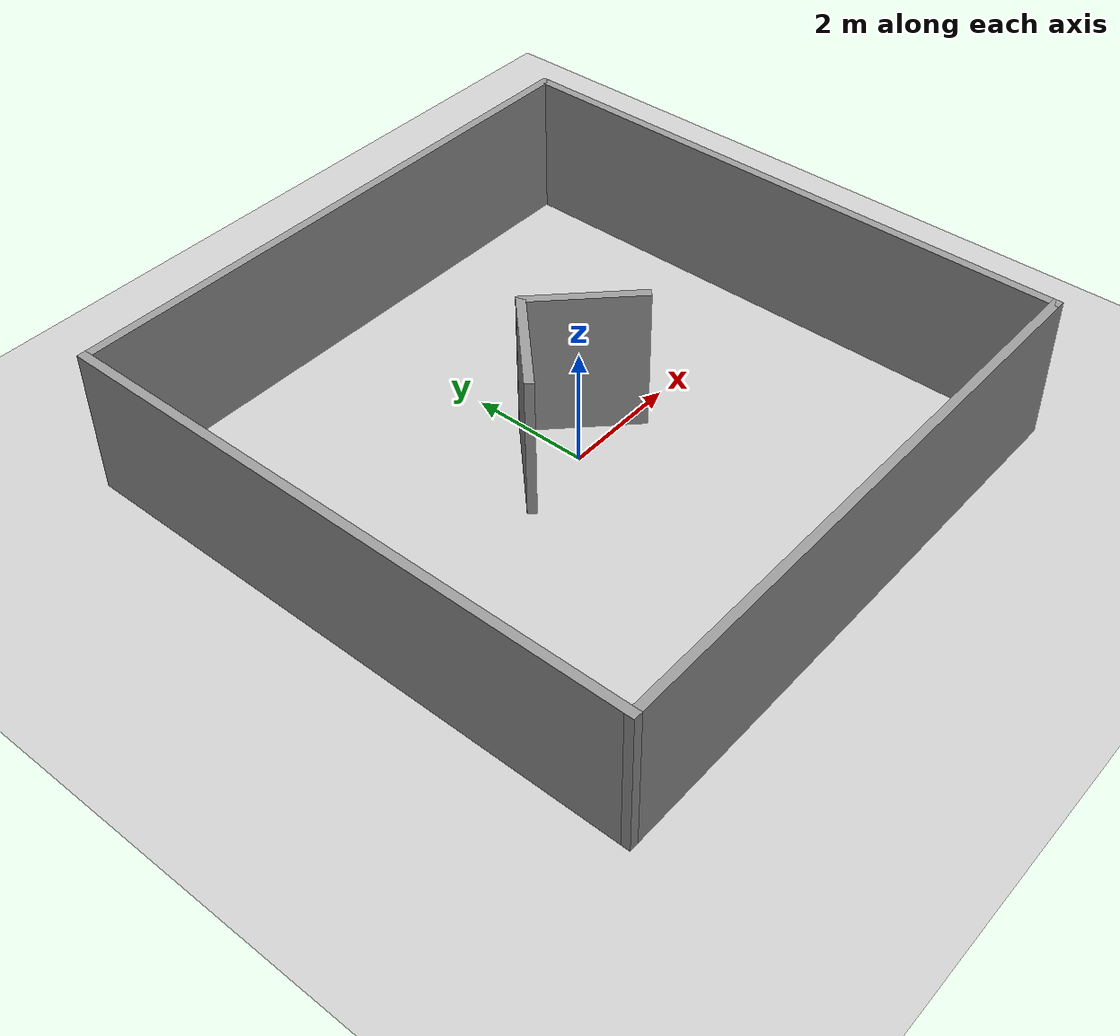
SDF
<sdf version="1.6">
 <world name="default">
  <light name="sun" type="directional">
   <pose>0 0 10 0 -0 0</pose>
   <diffuse>0.8 0.8 0.8 1</diffuse>
   <specular>0.1 0.1 0.1 1</specular>
   <attenuation>
    <range>1000</range>
    <constant>0.9</constant>
    <linear>0.01</linear>
    <quadratic>0.001</quadratic>
   </attenuation>
   <direction>-0.5 0.5 -1</direction>
  </light>
  <model name="ground_plane">
   <static>1</static>
   <link name="link">
    <collision name="collision">
     <geometry><plane><normal>0 0 1</normal><size>100 100</size></plane></geometry>
     <surface><friction><ode><mu>100</mu><mu2>50</mu2></ode></friction></surface>
    </collision>
    <visual name="visual">
     <cast_shadows>0</cast_shadows>
     <geometry><plane><normal>0 0 1</normal><size>100 100</size></plane></geometry>
     <material>
      <script><uri>file://media/materials/scripts/gazebo.material</uri><name>Gazebo/Grey</name></script>
     </material>
    </visual>
   </link>
  </model>
  <gravity>0 0 -9.8</gravity>
  <magnetic_field>6e-06 2.3e-05 -4.2e-05</magnetic_field>
  <atmosphere type="adiabatic"/>
  <physics name="default_physics" default="0" type="ode">
   <max_step_size>0.001</max_step_size>
   <real_time_factor>1</real_time_factor>
   <real_time_update_rate>1000</real_time_update_rate>
  </physics>
  <scene><ambient>0.4 0.4 0.4 1</ambient><background>0.7 0.7 0.7 1</background><shadows>1</shadows></scene>
  <spherical_coordinates>
   <surface_model>EARTH_WGS84</surface_model>
   <latitude_deg>0</latitude_deg>
   <longitude_deg>0</longitude_deg>
   <elevation>0</elevation>
   <heading_deg>0</heading_deg>
  </spherical_coordinates>
  <model name="10by10box">
   <pose>0.014136 -4.6e-05 0 0 -0 0</pose>
   <link name="Wall_0">
    <collision name="Wall_0_Collision">
     <geometry><box><size>10 0.15 2.5</size></box></geometry>
     <pose>0 0 1.25 0 -0 0</pose>
    </collision>
    <visual name="Wall_0_Visual">
     <pose>0 0 1.25 0 -0 0</pose>
     <geometry><box><size>10 0.15 2.5</size></box></geometry>
     <material>
      <script><uri>file://media/materials/scripts/gazebo.material</uri><name>Gazebo/Grey</name></script>
      <ambient>1 1 1 1</ambient>
     </material>
    </visual>
    <pose>-4.925 0 0 0 -0 1.5708</pose>
   </link>
   <link name="Wall_1">
    <collision name="Wall_1_Collision">
     <geometry><box><size>10 0.15 2.5</size></box></geometry>
     <pose>0 0 1.25 0 -0 0</pose>
    </collision>
    <visual name="Wall_1_Visual">
     <pose>0 0 1.25 0 -0 0</pose>
     <geometry><box><size>10 0.15 2.5</size></box></geometry>
     <material>
      <script><uri>file://media/materials/scripts/gazebo.material</uri><name>Gazebo/Grey</name></script>
      <ambient>1 1 1 1</ambient>
     </material>
    </visual>
    <pose>0 4.925 0 0 -0 0</pose>
   </link>
   <link name="Wall_2">
    <collision name="Wall_2_Collision">
     <geometry><box><size>10 0.15 2.5</size></box></geometry>
     <pose>0 0 1.25 0 -0 0</pose>
    </collision>
    <visual name="Wall_2_Visual">
     <pose>0 0 1.25 0 -0 0</pose>
     <geometry><box><size>10 0.15 2.5</size></box></geometry>
     <material>
      <script><uri>file://media/materials/scripts/gazebo.material</uri><name>Gazebo/Grey</name></script>
      <ambient>1 1 1 1</ambient>
     </material>
    </visual>
    <pose>4.925 0 0 0 0 -1.5708</pose>
   </link>
   <link name="Wall_3">
    <collision name="Wall_3_Collision">
     <geometry><box><size>10 0.15 2.5</size></box></geometry>
     <pose>0 0 1.25 0 -0 0</pose>
    </collision>
    <visual name="Wall_3_Visual">
     <pose>0 0 1.25 0 -0 0</pose>
     <geometry><box><size>10 0.15 2.5</size></box></geometry>
     <material>
      <script><uri>file://media/materials/scripts/gazebo.material</uri><name>Gazebo/Grey</name></script>
      <ambient>1 1 1 1</ambient>
     </material>
    </visual>
    <pose>0 -4.925 0 0 -0 3.14159</pose>
   </link>
   <static>1</static>
  </model>
  <model name="corner_0">
   <pose>-0.004166 0.45501 0 0 -0 0</pose>
   <link name="Wall_0">
    <collision name="Wall_0_Collision">
     <geometry><box><size>2 0.15 2.5</size></box></geometry>
     <pose>0 0 1.25 0 -0 0</pose>
    </collision>
    <visual name="Wall_0_Visual">
     <pose>0 0 1.25 0 -0 0</pose>
     <geometry><box><size>2 0.15 2.5</size></box></geometry>
     <material>
      <script><uri>file://media/materials/scripts/gazebo.material</uri><name>Gazebo/Grey</name></script>
      <ambient>1 1 1 1</ambient>
     </material>
    </visual>
    <pose>-0.654074 0 0 0 -0 0.785398</pose>
   </link>
   <link name="Wall_1">
    <collision name="Wall_1_Collision">
     <geometry><box><size>2 0.15 2.5</size></box></geometry>
     <pose>0 0 1.25 0 -0 0</pose>
    </collision>
    <visual name="Wall_1_Visual">
     <pose>0 0 1.25 0 -0 0</pose>
     <geometry><box><size>2 0.15 2.5</size></box></geometry>
     <material>
      <script><uri>file://media/materials/scripts/gazebo.material</uri><name>Gazebo/Grey</name></script>
      <ambient>1 1 1 1</ambient>
     </material>
    </visual>
    <pose>0.654074 0 0 0 0 -0.785398</pose>
   </link>
   <static>1</static>
  </model>
 </world>
</sdf>
